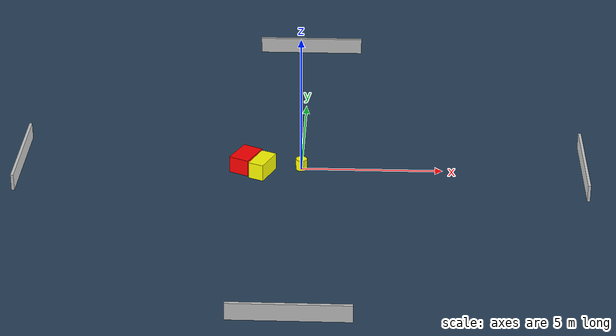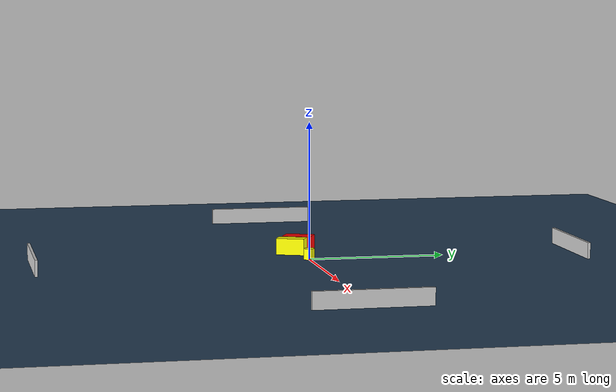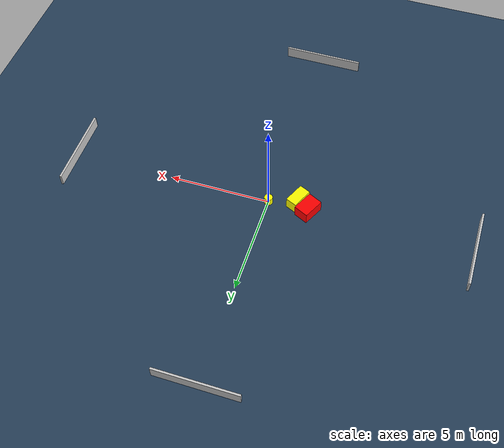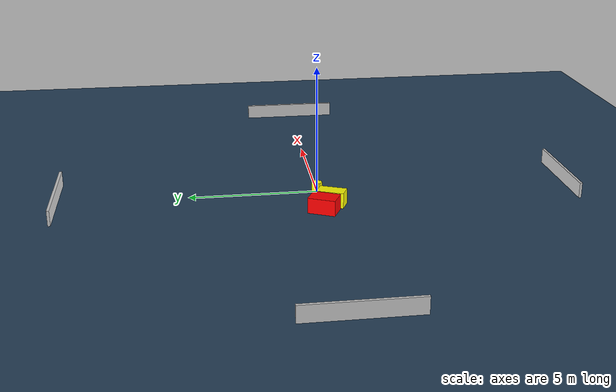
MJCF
<?xml version="1.0" ?>
<mujoco model="generated_environment">
  <option timestep="0.01" integrator="RK4" cone="elliptic"/>
  <default>
    <geom density="1"/>
  </default>
  <asset>
    <texture builtin="gradient" height="3072" name="skybox" rgb1="0.3 0.5 0.7" rgb2="0 0 0" type="skybox" width="512"/>
    <texture builtin="checker" height="300" name="groundplane" rgb1="0.2 0.3 0.4" rgb2="0.1 0.2 0.3" type="2d" width="300"/>
    <material name="groundplane" reflectance="0.2" texrepeat="5 5" texture="groundplane"/>
  </asset>
  <worldbody>
    <light dir="0 0 -1" directional="true" pos="0 0 1.5"/>
    <geom condim="3" friction="0.5 0.005 0.001" material="groundplane" name="floor" pos="0 0 0" size="0 0 0.05" type="plane"/>
    <body name="walls">
      <geom name="wall_1" condim="4" pos="-10.0 0.0 0.3" rgba="0.800000011920929 0.800000011920929 0.800000011920929 1.0" size="0.05 2.0 0.3" type="box"/>
      <geom name="wall_2" condim="4" pos="10.0 0.0 0.3" rgba="0.800000011920929 0.800000011920929 0.800000011920929 1.0" size="0.05 2.0 0.3" type="box"/>
      <geom name="wall_3" condim="4" pos="0.0 -10.0 0.3" rgba="0.800000011920929 0.800000011920929 0.800000011920929 1.0" size="2.0 0.05 0.3" type="box"/>
      <geom name="wall_4" condim="4" pos="0.0 10.0 0.3" rgba="0.800000011920929 0.800000011920929 0.800000011920929 1.0" size="2.0 0.05 0.3" type="box"/>
    </body>
    <body name="robot">
      <joint name="joint_x" type="slide" pos="0 0 0" axis="1 0 0"/>
      <joint name="joint_y" type="slide" pos="0 0 0" axis="0 1 0"/>
      <geom name="robot" type="cylinder" pos="0.0 0.0 0.2" size="0.2 0.2 0.0" mass="5.0" friction="1.0 0.005 0.0001" condim="4" rgba="1.0 1.0 0.0 1.0"/>
    </body>
    <body name="obstacle_1_movable">
      <geom name="obstacle_1_movable" condim="4" pos="-1.3669371296119446 -0.38348804617815896 0.3" euler="0 0 336.25576425984855" friction="0.0 0.005 0.001" rgba="1.0 1.0 0.0 1.0" size="0.2816974850861793 0.5271441236380638 0.3" type="box" mass="0.1"/>
      <joint type="free"/>
    </body>
    <body name="obstacle_2_static">
      <geom name="obstacle_2_static" condim="4" pos="-1.9734176500210225 -0.007395204521112309 0.3" euler="0 0 244.34547533463888" friction="0.0 0.005 0.001" rgba="1.0 0.0 0.0 1.0" size="0.5330824903082295 0.3692042781598005 0.3" type="box"/>
    </body>
  </worldbody>
  <actuator>
    <motor name="actuator_x" joint="joint_x" gear="1" ctrlrange="-1 1"/>
    <motor name="actuator_y" joint="joint_y" gear="1" ctrlrange="-1 1"/>
  </actuator>
</mujoco>
